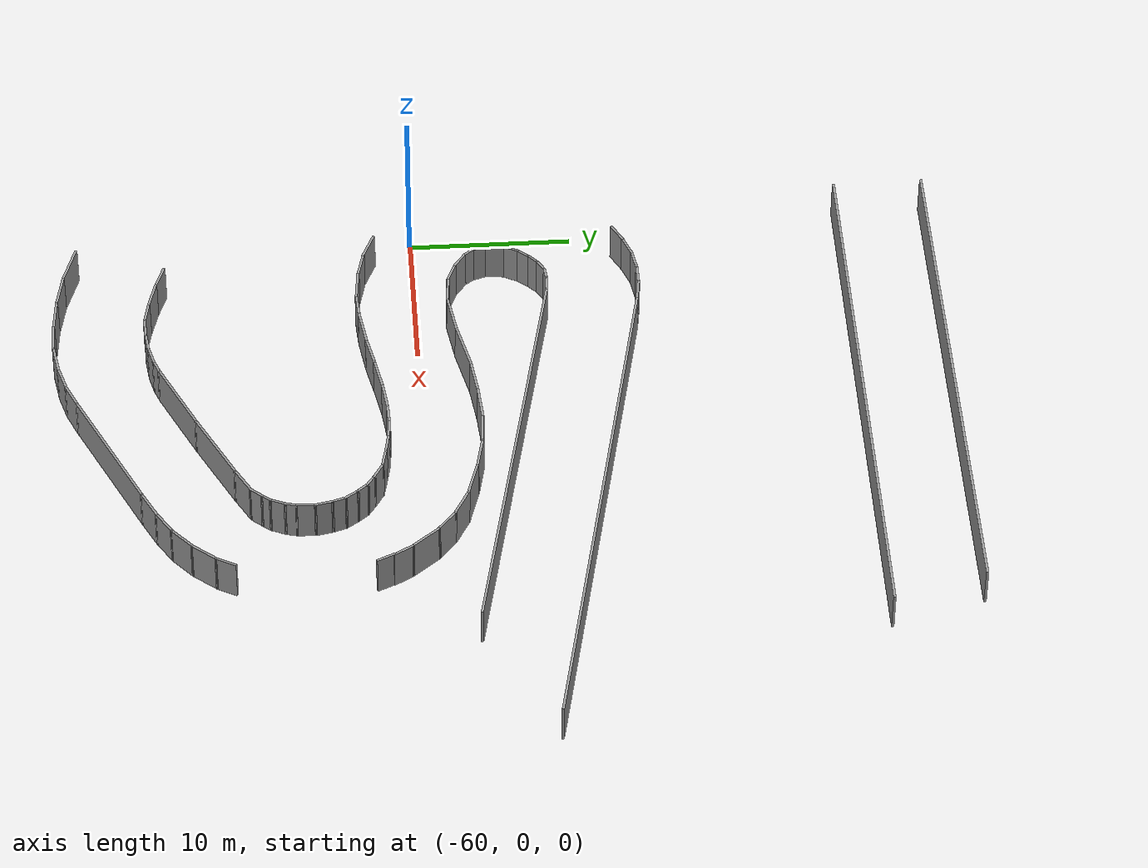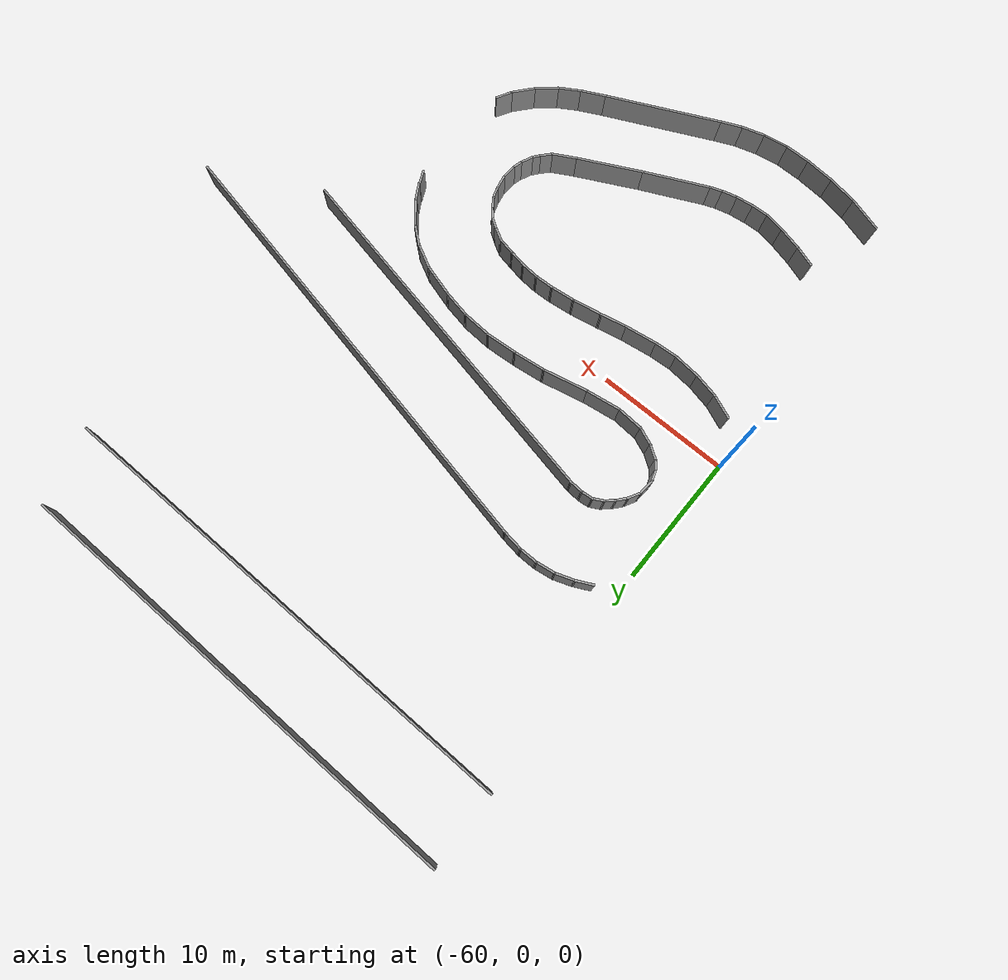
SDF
<sdf version="1.6">
 <model name="pista_l">
  <pose>-4.26084 -21.2973 0 0 -0 0</pose>
  <link name="Wall_0">
   <collision name="Wall_0_Collision">
    <geometry><box><size>34.8647 0.15 2.5</size></box></geometry>
    <pose>0 0 1.25 0 -0 0</pose>
   </collision>
   <visual name="Wall_0_Visual">
    <pose>0 0 1.25 0 -0 0</pose>
    <geometry><box><size>34.8647 0.15 2.5</size></box></geometry>
    <material>
     <script><uri>file://media/materials/scripts/gazebo.material</uri><name>Gazebo/Grey</name></script>
     <ambient>1 1 1 1</ambient>
    </material>
    <meta><layer>0</layer></meta>
   </visual>
   <pose>-39.9137 53.4663 0 0 0 -0.009195</pose>
  </link>
  <link name="Wall_247">
   <collision name="Wall_247_Collision">
    <geometry><box><size>35.0031 0.15 2.5</size></box></geometry>
    <pose>0 0 1.25 0 -0 0</pose>
   </collision>
   <visual name="Wall_247_Visual">
    <pose>0 0 1.25 0 -0 0</pose>
    <geometry><box><size>35.0031 0.15 2.5</size></box></geometry>
    <material>
     <script><uri>file://media/materials/scripts/gazebo.material</uri><name>Gazebo/Grey</name></script>
     <ambient>1 1 1 1</ambient>
    </material>
    <meta><layer>0</layer></meta>
   </visual>
   <pose>-30.3243 31.428 0 0 -0 2.94105</pose>
  </link>
  <link name="Wall_248">
   <collision name="Wall_248_Collision">
    <geometry><box><size>1.68107 0.15 2.5</size></box></geometry>
    <pose>0 0 1.25 0 -0 0</pose>
   </collision>
   <visual name="Wall_248_Visual">
    <pose>0 0 1.25 0 -0 0</pose>
    <geometry><box><size>1.68107 0.15 2.5</size></box></geometry>
    <material>
     <script><uri>file://media/materials/scripts/gazebo.material</uri><name>Gazebo/Grey</name></script>
     <ambient>1 1 1 1</ambient>
    </material>
    <meta><layer>0</layer></meta>
   </visual>
   <pose>-48.1597 35.0058 0 0 -0 3.00215</pose>
  </link>
  <link name="Wall_249">
   <collision name="Wall_249_Collision">
    <geometry><box><size>1.48001 0.15 2.5</size></box></geometry>
    <pose>0 0 1.25 0 -0 0</pose>
   </collision>
   <visual name="Wall_249_Visual">
    <pose>0 0 1.25 0 -0 0</pose>
    <geometry><box><size>1.48001 0.15 2.5</size></box></geometry>
    <material>
     <script><uri>file://media/materials/scripts/gazebo.material</uri><name>Gazebo/Grey</name></script>
     <ambient>1 1 1 1</ambient>
    </material>
    <meta><layer>0</layer></meta>
   </visual>
   <pose>-49.5829 35.1122 0 0 -0 3.14159</pose>
  </link>
  <link name="Wall_250">
   <collision name="Wall_250_Collision">
    <geometry><box><size>1.54948 0.15 2.5</size></box></geometry>
    <pose>0 0 1.25 0 -0 0</pose>
   </collision>
   <visual name="Wall_250_Visual">
    <pose>0 0 1.25 0 -0 0</pose>
    <geometry><box><size>1.54948 0.15 2.5</size></box></geometry>
    <material>
     <script><uri>file://media/materials/scripts/gazebo.material</uri><name>Gazebo/Grey</name></script>
     <ambient>1 1 1 1</ambient>
    </material>
    <meta><layer>0</layer></meta>
   </visual>
   <pose>-50.9395 35.0058 0 0 0 -2.98894</pose>
  </link>
  <link name="Wall_251">
   <collision name="Wall_251_Collision">
    <geometry><box><size>1.56357 0.15 2.5</size></box></geometry>
    <pose>0 0 1.25 0 -0 0</pose>
   </collision>
   <visual name="Wall_251_Visual">
    <pose>0 0 1.25 0 -0 0</pose>
    <geometry><box><size>1.56357 0.15 2.5</size></box></geometry>
    <material>
     <script><uri>file://media/materials/scripts/gazebo.material</uri><name>Gazebo/Grey</name></script>
     <ambient>1 1 1 1</ambient>
    </material>
    <meta><layer>0</layer></meta>
   </visual>
   <pose>-52.2961 34.66 0 0 0 -2.79604</pose>
  </link>
  <link name="Wall_252">
   <collision name="Wall_252_Collision">
    <geometry><box><size>1.39908 0.15 2.5</size></box></geometry>
    <pose>0 0 1.25 0 -0 0</pose>
   </collision>
   <visual name="Wall_252_Visual">
    <pose>0 0 1.25 0 -0 0</pose>
    <geometry><box><size>1.39908 0.15 2.5</size></box></geometry>
    <material>
     <script><uri>file://media/materials/scripts/gazebo.material</uri><name>Gazebo/Grey</name></script>
     <ambient>1 1 1 1</ambient>
    </material>
    <meta><layer>0</layer></meta>
   </visual>
   <pose>-53.5197 34.1413 0 0 0 -2.67794</pose>
  </link>
  <link name="Wall_254">
   <collision name="Wall_254_Collision">
    <geometry><box><size>28.1901 0.15 2.5</size></box></geometry>
    <pose>0 0 1.25 0 -0 0</pose>
   </collision>
   <visual name="Wall_254_Visual">
    <pose>0 0 1.25 0 -0 0</pose>
    <geometry><box><size>28.1901 0.15 2.5</size></box></geometry>
    <material>
     <script><uri>file://media/materials/scripts/gazebo.material</uri><name>Gazebo/Grey</name></script>
     <ambient>1 1 1 1</ambient>
    </material>
    <meta><layer>0</layer></meta>
   </visual>
   <pose>-34.9128 26.6267 0 0 -0 2.94103</pose>
  </link>
  <link name="Wall_255">
   <collision name="Wall_255_Collision">
    <geometry><box><size>1.10908 0.15 2.5</size></box></geometry>
    <pose>0 0 1.25 0 -0 0</pose>
   </collision>
   <visual name="Wall_255_Visual">
    <pose>0 0 1.25 0 -0 0</pose>
    <geometry><box><size>1.10908 0.15 2.5</size></box></geometry>
    <material>
     <script><uri>file://media/materials/scripts/gazebo.material</uri><name>Gazebo/Grey</name></script>
     <ambient>1 1 1 1</ambient>
    </material>
    <meta><layer>0</layer></meta>
   </visual>
   <pose>-49.1307 29.4463 0 0 -0 3.08609</pose>
  </link>
  <link name="Wall_256">
   <collision name="Wall_256_Collision">
    <geometry><box><size>0.978458 0.15 2.5</size></box></geometry>
    <pose>0 0 1.25 0 -0 0</pose>
   </collision>
   <visual name="Wall_256_Visual">
    <pose>0 0 1.25 0 -0 0</pose>
    <geometry><box><size>0.978458 0.15 2.5</size></box></geometry>
    <material>
     <script><uri>file://media/materials/scripts/gazebo.material</uri><name>Gazebo/Grey</name></script>
     <ambient>1 1 1 1</ambient>
    </material>
    <meta><layer>0</layer></meta>
   </visual>
   <pose>-50.0218 29.433 0 0 0 -3.04512</pose>
  </link>
  <link name="Wall_257">
   <collision name="Wall_257_Collision">
    <geometry><box><size>0.971597 0.15 2.5</size></box></geometry>
    <pose>0 0 1.25 0 -0 0</pose>
   </collision>
   <visual name="Wall_257_Visual">
    <pose>0 0 1.25 0 -0 0</pose>
    <geometry><box><size>0.971597 0.15 2.5</size></box></geometry>
    <material>
     <script><uri>file://media/materials/scripts/gazebo.material</uri><name>Gazebo/Grey</name></script>
     <ambient>1 1 1 1</ambient>
    </material>
    <meta><layer>0</layer></meta>
   </visual>
   <pose>-50.7932 29.1936 0 0 0 -2.63449</pose>
  </link>
  <link name="Wall_258">
   <collision name="Wall_258_Collision">
    <geometry><box><size>0.903307 0.15 2.5</size></box></geometry>
    <pose>0 0 1.25 0 -0 0</pose>
   </collision>
   <visual name="Wall_258_Visual">
    <pose>0 0 1.25 0 -0 0</pose>
    <geometry><box><size>0.903307 0.15 2.5</size></box></geometry>
    <material>
     <script><uri>file://media/materials/scripts/gazebo.material</uri><name>Gazebo/Grey</name></script>
     <ambient>1 1 1 1</ambient>
    </material>
    <meta><layer>0</layer></meta>
   </visual>
   <pose>-51.4316 28.7414 0 0 0 -2.40615</pose>
  </link>
  <link name="Wall_259">
   <collision name="Wall_259_Collision">
    <geometry><box><size>0.981017 0.15 2.5</size></box></geometry>
    <pose>0 0 1.25 0 -0 0</pose>
   </collision>
   <visual name="Wall_259_Visual">
    <pose>0 0 1.25 0 -0 0</pose>
    <geometry><box><size>0.981017 0.15 2.5</size></box></geometry>
    <material>
     <script><uri>file://media/materials/scripts/gazebo.material</uri><name>Gazebo/Grey</name></script>
     <ambient>1 1 1 1</ambient>
    </material>
    <meta><layer>0</layer></meta>
   </visual>
   <pose>-51.9769 28.1695 0 0 0 -2.26553</pose>
  </link>
  <link name="Wall_260">
   <collision name="Wall_260_Collision">
    <geometry><box><size>1.09046 0.15 2.5</size></box></geometry>
    <pose>0 0 1.25 0 -0 0</pose>
   </collision>
   <visual name="Wall_260_Visual">
    <pose>0 0 1.25 0 -0 0</pose>
    <geometry><box><size>1.09046 0.15 2.5</size></box></geometry>
    <material>
     <script><uri>file://media/materials/scripts/gazebo.material</uri><name>Gazebo/Grey</name></script>
     <ambient>1 1 1 1</ambient>
    </material>
    <meta><layer>0</layer></meta>
   </visual>
   <pose>-52.469 27.438 0 0 0 -2.0724</pose>
  </link>
  <link name="Wall_261">
   <collision name="Wall_261_Collision">
    <geometry><box><size>1.32313 0.15 2.5</size></box></geometry>
    <pose>0 0 1.25 0 -0 0</pose>
   </collision>
   <visual name="Wall_261_Visual">
    <pose>0 0 1.25 0 -0 0</pose>
    <geometry><box><size>1.32313 0.15 2.5</size></box></geometry>
    <material>
     <script><uri>file://media/materials/scripts/gazebo.material</uri><name>Gazebo/Grey</name></script>
     <ambient>1 1 1 1</ambient>
    </material>
    <meta><layer>0</layer></meta>
   </visual>
   <pose>-52.735 26.4405 0 0 0 -1.63887</pose>
  </link>
  <link name="Wall_262">
   <collision name="Wall_262_Collision">
    <geometry><box><size>0.96598 0.15 2.5</size></box></geometry>
    <pose>0 0 1.25 0 -0 0</pose>
   </collision>
   <visual name="Wall_262_Visual">
    <pose>0 0 1.25 0 -0 0</pose>
    <geometry><box><size>0.96598 0.15 2.5</size></box></geometry>
    <material>
     <script><uri>file://media/materials/scripts/gazebo.material</uri><name>Gazebo/Grey</name></script>
     <ambient>1 1 1 1</ambient>
    </material>
    <meta><layer>0</layer></meta>
   </visual>
   <pose>-52.6419 25.4696 0 0 0 -1.23874</pose>
  </link>
  <link name="Wall_264">
   <collision name="Wall_264_Collision">
    <geometry><box><size>0.793923 0.15 2.5</size></box></geometry>
    <pose>0 0 1.25 0 -0 0</pose>
   </collision>
   <visual name="Wall_264_Visual">
    <pose>0 0 1.25 0 -0 0</pose>
    <geometry><box><size>0.793923 0.15 2.5</size></box></geometry>
    <material>
     <script><uri>file://media/materials/scripts/gazebo.material</uri><name>Gazebo/Grey</name></script>
     <ambient>1 1 1 1</ambient>
    </material>
    <meta><layer>0</layer></meta>
   </visual>
   <pose>-52.2828 24.8046 0 0 0 -0.902507</pose>
  </link>
  <link name="Wall_265">
   <collision name="Wall_265_Collision">
    <geometry><box><size>1.27886 0.15 2.5</size></box></geometry>
    <pose>0 0 1.25 0 -0 0</pose>
   </collision>
   <visual name="Wall_265_Visual">
    <pose>0 0 1.25 0 -0 0</pose>
    <geometry><box><size>1.27886 0.15 2.5</size></box></geometry>
    <material>
     <script><uri>file://media/materials/scripts/gazebo.material</uri><name>Gazebo/Grey</name></script>
     <ambient>1 1 1 1</ambient>
    </material>
    <meta><layer>0</layer></meta>
   </visual>
   <pose>-51.6178 24.2327 0 0 0 -0.601074</pose>
  </link>
  <link name="Wall_266">
   <collision name="Wall_266_Collision">
    <geometry><box><size>1.47388 0.15 2.5</size></box></geometry>
    <pose>0 0 1.25 0 -0 0</pose>
   </collision>
   <visual name="Wall_266_Visual">
    <pose>0 0 1.25 0 -0 0</pose>
    <geometry><box><size>1.47388 0.15 2.5</size></box></geometry>
    <material>
     <script><uri>file://media/materials/scripts/gazebo.material</uri><name>Gazebo/Grey</name></script>
     <ambient>1 1 1 1</ambient>
    </material>
    <meta><layer>0</layer></meta>
   </visual>
   <pose>-50.5405 23.6608 0 0 0 -0.3917</pose>
  </link>
  <link name="Wall_267">
   <collision name="Wall_267_Collision">
    <geometry><box><size>2.06983 0.15 2.5</size></box></geometry>
    <pose>0 0 1.25 0 -0 0</pose>
   </collision>
   <visual name="Wall_267_Visual">
    <pose>0 0 1.25 0 -0 0</pose>
    <geometry><box><size>2.06983 0.15 2.5</size></box></geometry>
    <material>
     <script><uri>file://media/materials/scripts/gazebo.material</uri><name>Gazebo/Grey</name></script>
     <ambient>1 1 1 1</ambient>
    </material>
    <meta><layer>0</layer></meta>
   </visual>
   <pose>-48.9711 23.3416 0 0 0 -0.069333</pose>
  </link>
  <link name="Wall_268">
   <collision name="Wall_268_Collision">
    <geometry><box><size>2.73063 0.15 2.5</size></box></geometry>
    <pose>0 0 1.25 0 -0 0</pose>
   </collision>
   <visual name="Wall_268_Visual">
    <pose>0 0 1.25 0 -0 0</pose>
    <geometry><box><size>2.73063 0.15 2.5</size></box></geometry>
    <material>
     <script><uri>file://media/materials/scripts/gazebo.material</uri><name>Gazebo/Grey</name></script>
     <ambient>1 1 1 1</ambient>
    </material>
    <meta><layer>0</layer></meta>
   </visual>
   <pose>-46.7366 23.4613 0 0 -0 0.144812</pose>
  </link>
  <link name="Wall_269">
   <collision name="Wall_269_Collision">
    <geometry><box><size>3.47375 0.15 2.5</size></box></geometry>
    <pose>0 0 1.25 0 -0 0</pose>
   </collision>
   <visual name="Wall_269_Visual">
    <pose>0 0 1.25 0 -0 0</pose>
    <geometry><box><size>3.47375 0.15 2.5</size></box></geometry>
    <material>
     <script><uri>file://media/materials/scripts/gazebo.material</uri><name>Gazebo/Grey</name></script>
     <ambient>1 1 1 1</ambient>
    </material>
    <meta><layer>0</layer></meta>
   </visual>
   <pose>-43.8372 24.0066 0 0 -0 0.217801</pose>
  </link>
  <link name="Wall_270">
   <collision name="Wall_270_Collision">
    <geometry><box><size>2.53543 0.15 2.5</size></box></geometry>
    <pose>0 0 1.25 0 -0 0</pose>
   </collision>
   <visual name="Wall_270_Visual">
    <pose>0 0 1.25 0 -0 0</pose>
    <geometry><box><size>2.53543 0.15 2.5</size></box></geometry>
    <material>
     <script><uri>file://media/materials/scripts/gazebo.material</uri><name>Gazebo/Grey</name></script>
     <ambient>1 1 1 1</ambient>
    </material>
    <meta><layer>0</layer></meta>
   </visual>
   <pose>-41.0309 24.512 0 0 -0 0.122972</pose>
  </link>
  <link name="Wall_271">
   <collision name="Wall_271_Collision">
    <geometry><box><size>2.41664 0.15 2.5</size></box></geometry>
    <pose>0 0 1.25 0 -0 0</pose>
   </collision>
   <visual name="Wall_271_Visual">
    <pose>0 0 1.25 0 -0 0</pose>
    <geometry><box><size>2.41664 0.15 2.5</size></box></geometry>
    <material>
     <script><uri>file://media/materials/scripts/gazebo.material</uri><name>Gazebo/Grey</name></script>
     <ambient>1 1 1 1</ambient>
    </material>
    <meta><layer>0</layer></meta>
   </visual>
   <pose>-38.7167 24.7381 0 0 -0 0.070471</pose>
  </link>
  <link name="Wall_272">
   <collision name="Wall_272_Collision">
    <geometry><box><size>2.33527 0.15 2.5</size></box></geometry>
    <pose>0 0 1.25 0 -0 0</pose>
   </collision>
   <visual name="Wall_272_Visual">
    <pose>0 0 1.25 0 -0 0</pose>
    <geometry><box><size>2.33527 0.15 2.5</size></box></geometry>
    <material>
     <script><uri>file://media/materials/scripts/gazebo.material</uri><name>Gazebo/Grey</name></script>
     <ambient>1 1 1 1</ambient>
    </material>
    <meta><layer>0</layer></meta>
   </visual>
   <pose>-36.4956 24.7514 0 0 0 -0.0609</pose>
  </link>
  <link name="Wall_273">
   <collision name="Wall_273_Collision">
    <geometry><box><size>2.18452 0.15 2.5</size></box></geometry>
    <pose>0 0 1.25 0 -0 0</pose>
   </collision>
   <visual name="Wall_273_Visual">
    <pose>0 0 1.25 0 -0 0</pose>
    <geometry><box><size>2.18452 0.15 2.5</size></box></geometry>
    <material>
     <script><uri>file://media/materials/scripts/gazebo.material</uri><name>Gazebo/Grey</name></script>
     <ambient>1 1 1 1</ambient>
    </material>
    <meta><layer>0</layer></meta>
   </visual>
   <pose>-34.4074 24.4854 0 0 0 -0.197396</pose>
  </link>
  <link name="Wall_274">
   <collision name="Wall_274_Collision">
    <geometry><box><size>2.61637 0.15 2.5</size></box></geometry>
    <pose>0 0 1.25 0 -0 0</pose>
   </collision>
   <visual name="Wall_274_Visual">
    <pose>0 0 1.25 0 -0 0</pose>
    <geometry><box><size>2.61637 0.15 2.5</size></box></geometry>
    <material>
     <script><uri>file://media/materials/scripts/gazebo.material</uri><name>Gazebo/Grey</name></script>
     <ambient>1 1 1 1</ambient>
    </material>
    <meta><layer>0</layer></meta>
   </visual>
   <pose>-32.2262 23.9401 0 0 0 -0.284226</pose>
  </link>
  <link name="Wall_275">
   <collision name="Wall_275_Collision">
    <geometry><box><size>2.0418 0.15 2.5</size></box></geometry>
    <pose>0 0 1.25 0 -0 0</pose>
   </collision>
   <visual name="Wall_275_Visual">
    <pose>0 0 1.25 0 -0 0</pose>
    <geometry><box><size>2.0418 0.15 2.5</size></box></geometry>
    <material>
     <script><uri>file://media/materials/scripts/gazebo.material</uri><name>Gazebo/Grey</name></script>
     <ambient>1 1 1 1</ambient>
    </material>
    <meta><layer>0</layer></meta>
   </visual>
   <pose>-30.2046 23.1554 0 0 0 -0.482513</pose>
  </link>
  <link name="Wall_276">
   <collision name="Wall_276_Collision">
    <geometry><box><size>1.79513 0.15 2.5</size></box></geometry>
    <pose>0 0 1.25 0 -0 0</pose>
   </collision>
   <visual name="Wall_276_Visual">
    <pose>0 0 1.25 0 -0 0</pose>
    <geometry><box><size>1.79513 0.15 2.5</size></box></geometry>
    <material>
     <script><uri>file://media/materials/scripts/gazebo.material</uri><name>Gazebo/Grey</name></script>
     <ambient>1 1 1 1</ambient>
    </material>
    <meta><layer>0</layer></meta>
   </visual>
   <pose>-28.7283 22.1978 0 0 0 -0.682317</pose>
  </link>
  <link name="Wall_277">
   <collision name="Wall_277_Collision">
    <geometry><box><size>2.22754 0.15 2.5</size></box></geometry>
    <pose>0 0 1.25 0 -0 0</pose>
   </collision>
   <visual name="Wall_277_Visual">
    <pose>0 0 1.25 0 -0 0</pose>
    <geometry><box><size>2.22754 0.15 2.5</size></box></geometry>
    <material>
     <script><uri>file://media/materials/scripts/gazebo.material</uri><name>Gazebo/Grey</name></script>
     <ambient>1 1 1 1</ambient>
    </material>
    <meta><layer>0</layer></meta>
   </visual>
   <pose>-27.4249 20.8811 0 0 0 -0.876058</pose>
  </link>
  <link name="Wall_278">
   <collision name="Wall_278_Collision">
    <geometry><box><size>1.41372 0.15 2.5</size></box></geometry>
    <pose>0 0 1.25 0 -0 0</pose>
   </collision>
   <visual name="Wall_278_Visual">
    <pose>0 0 1.25 0 -0 0</pose>
    <geometry><box><size>1.41372 0.15 2.5</size></box></geometry>
    <material>
     <script><uri>file://media/materials/scripts/gazebo.material</uri><name>Gazebo/Grey</name></script>
     <ambient>1 1 1 1</ambient>
    </material>
    <meta><layer>0</layer></meta>
   </visual>
   <pose>-26.4407 19.5377 0 0 0 -1.04121</pose>
  </link>
  <link name="Wall_292">
   <collision name="Wall_292_Collision">
    <geometry><box><size>1.93836 0.15 2.5</size></box></geometry>
    <pose>0 0 1.25 0 -0 0</pose>
   </collision>
   <visual name="Wall_292_Visual">
    <pose>0 0 1.25 0 -0 0</pose>
    <geometry><box><size>1.93836 0.15 2.5</size></box></geometry>
    <material>
     <script><uri>file://media/materials/scripts/gazebo.material</uri><name>Gazebo/Grey</name></script>
     <ambient>1 1 1 1</ambient>
    </material>
    <meta><layer>0</layer></meta>
   </visual>
   <pose>-53.2537 18.62 0 0 0 -0.397079</pose>
  </link>
  <link name="Wall_293">
   <collision name="Wall_293_Collision">
    <geometry><box><size>1.97633 0.15 2.5</size></box></geometry>
    <pose>0 0 1.25 0 -0 0</pose>
   </collision>
   <visual name="Wall_293_Visual">
    <pose>0 0 1.25 0 -0 0</pose>
    <geometry><box><size>1.97633 0.15 2.5</size></box></geometry>
    <material>
     <script><uri>file://media/materials/scripts/gazebo.material</uri><name>Gazebo/Grey</name></script>
     <ambient>1 1 1 1</ambient>
    </material>
    <meta><layer>0</layer></meta>
   </visual>
   <pose>-51.538 18.0747 0 0 0 -0.220249</pose>
  </link>
  <link name="Wall_294">
   <collision name="Wall_294_Collision">
    <geometry><box><size>2.1272 0.15 2.5</size></box></geometry>
    <pose>0 0 1.25 0 -0 0</pose>
   </collision>
   <visual name="Wall_294_Visual">
    <pose>0 0 1.25 0 -0 0</pose>
    <geometry><box><size>2.1272 0.15 2.5</size></box></geometry>
    <material>
     <script><uri>file://media/materials/scripts/gazebo.material</uri><name>Gazebo/Grey</name></script>
     <ambient>1 1 1 1</ambient>
    </material>
    <meta><layer>0</layer></meta>
   </visual>
   <pose>-49.6627 17.7821 0 0 0 -0.094314</pose>
  </link>
  <link name="Wall_295">
   <collision name="Wall_295_Collision">
    <geometry><box><size>1.82919 0.15 2.5</size></box></geometry>
    <pose>0 0 1.25 0 -0 0</pose>
   </collision>
   <visual name="Wall_295_Visual">
    <pose>0 0 1.25 0 -0 0</pose>
    <geometry><box><size>1.82919 0.15 2.5</size></box></geometry>
    <material>
     <script><uri>file://media/materials/scripts/gazebo.material</uri><name>Gazebo/Grey</name></script>
     <ambient>1 1 1 1</ambient>
    </material>
    <meta><layer>0</layer></meta>
   </visual>
   <pose>-47.8405 17.7422 0 0 -0 0.063407</pose>
  </link>
  <link name="Wall_296">
   <collision name="Wall_296_Collision">
    <geometry><box><size>2.54254 0.15 2.5</size></box></geometry>
    <pose>0 0 1.25 0 -0 0</pose>
   </collision>
   <visual name="Wall_296_Visual">
    <pose>0 0 1.25 0 -0 0</pose>
    <geometry><box><size>2.54254 0.15 2.5</size></box></geometry>
    <material>
     <script><uri>file://media/materials/scripts/gazebo.material</uri><name>Gazebo/Grey</name></script>
     <ambient>1 1 1 1</ambient>
    </material>
    <meta><layer>0</layer></meta>
   </visual>
   <pose>-45.8189 17.9683 0 0 -0 0.145042</pose>
  </link>
  <link name="Wall_297">
   <collision name="Wall_297_Collision">
    <geometry><box><size>2.10634 0.15 2.5</size></box></geometry>
    <pose>0 0 1.25 0 -0 0</pose>
   </collision>
   <visual name="Wall_297_Visual">
    <pose>0 0 1.25 0 -0 0</pose>
    <geometry><box><size>2.10634 0.15 2.5</size></box></geometry>
    <material>
     <script><uri>file://media/materials/scripts/gazebo.material</uri><name>Gazebo/Grey</name></script>
     <ambient>1 1 1 1</ambient>
    </material>
    <meta><layer>0</layer></meta>
   </visual>
   <pose>-43.6776 18.3407 0 0 -0 0.205395</pose>
  </link>
  <link name="Wall_298">
   <collision name="Wall_298_Collision">
    <geometry><box><size>2.36741 0.15 2.5</size></box></geometry>
    <pose>0 0 1.25 0 -0 0</pose>
   </collision>
   <visual name="Wall_298_Visual">
    <pose>0 0 1.25 0 -0 0</pose>
    <geometry><box><size>2.36741 0.15 2.5</size></box></geometry>
    <material>
     <script><uri>file://media/materials/scripts/gazebo.material</uri><name>Gazebo/Grey</name></script>
     <ambient>1 1 1 1</ambient>
    </material>
    <meta><layer>0</layer></meta>
   </visual>
   <pose>-41.6294 18.7397 0 0 -0 0.180926</pose>
  </link>
  <link name="Wall_299">
   <collision name="Wall_299_Collision">
    <geometry><box><size>1.94487 0.15 2.5</size></box></geometry>
    <pose>0 0 1.25 0 -0 0</pose>
   </collision>
   <visual name="Wall_299_Visual">
    <pose>0 0 1.25 0 -0 0</pose>
    <geometry><box><size>1.94487 0.15 2.5</size></box></geometry>
    <material>
     <script><uri>file://media/materials/scripts/gazebo.material</uri><name>Gazebo/Grey</name></script>
     <ambient>1 1 1 1</ambient>
    </material>
    <meta><layer>0</layer></meta>
   </visual>
   <pose>-39.6477 19.0456 0 0 -0 0.11884</pose>
  </link>
  <link name="Wall_300">
   <collision name="Wall_300_Collision">
    <geometry><box><size>1.50687 0.15 2.5</size></box></geometry>
    <pose>0 0 1.25 0 -0 0</pose>
   </collision>
   <visual name="Wall_300_Visual">
    <pose>0 0 1.25 0 -0 0</pose>
    <geometry><box><size>1.50687 0.15 2.5</size></box></geometry>
    <material>
     <script><uri>file://media/materials/scripts/gazebo.material</uri><name>Gazebo/Grey</name></script>
     <ambient>1 1 1 1</ambient>
    </material>
    <meta><layer>0</layer></meta>
   </visual>
   <pose>-38.0783 19.1786 0 0 -0 0.039196</pose>
  </link>
  <link name="Wall_301">
   <collision name="Wall_301_Collision">
    <geometry><box><size>1.45775 0.15 2.5</size></box></geometry>
    <pose>0 0 1.25 0 -0 0</pose>
   </collision>
   <visual name="Wall_301_Visual">
    <pose>0 0 1.25 0 -0 0</pose>
    <geometry><box><size>1.45775 0.15 2.5</size></box></geometry>
    <material>
     <script><uri>file://media/materials/scripts/gazebo.material</uri><name>Gazebo/Grey</name></script>
     <ambient>1 1 1 1</ambient>
    </material>
    <meta><layer>0</layer></meta>
   </visual>
   <pose>-36.7483 19.152 0 0 0 -0.081452</pose>
  </link>
  <link name="Wall_302">
   <collision name="Wall_302_Collision">
    <geometry><box><size>1.36578 0.15 2.5</size></box></geometry>
    <pose>0 0 1.25 0 -0 0</pose>
   </collision>
   <visual name="Wall_302_Visual">
    <pose>0 0 1.25 0 -0 0</pose>
    <geometry><box><size>1.36578 0.15 2.5</size></box></geometry>
    <material>
     <script><uri>file://media/materials/scripts/gazebo.material</uri><name>Gazebo/Grey</name></script>
     <ambient>1 1 1 1</ambient>
    </material>
    <meta><layer>0</layer></meta>
   </visual>
   <pose>-35.4981 18.9924 0 0 0 -0.17594</pose>
  </link>
  <link name="Wall_303">
   <collision name="Wall_303_Collision">
    <geometry><box><size>1.45422 0.15 2.5</size></box></geometry>
    <pose>0 0 1.25 0 -0 0</pose>
   </collision>
   <visual name="Wall_303_Visual">
    <pose>0 0 1.25 0 -0 0</pose>
    <geometry><box><size>1.45422 0.15 2.5</size></box></geometry>
    <material>
     <script><uri>file://media/materials/scripts/gazebo.material</uri><name>Gazebo/Grey</name></script>
     <ambient>1 1 1 1</ambient>
    </material>
    <meta><layer>0</layer></meta>
   </visual>
   <pose>-34.2611 18.753 0 0 0 -0.205395</pose>
  </link>
  <link name="Wall_304">
   <collision name="Wall_304_Collision">
    <geometry><box><size>1.22229 0.15 2.5</size></box></geometry>
    <pose>0 0 1.25 0 -0 0</pose>
   </collision>
   <visual name="Wall_304_Visual">
    <pose>0 0 1.25 0 -0 0</pose>
    <geometry><box><size>1.22229 0.15 2.5</size></box></geometry>
    <material>
     <script><uri>file://media/materials/scripts/gazebo.material</uri><name>Gazebo/Grey</name></script>
     <ambient>1 1 1 1</ambient>
    </material>
    <meta><layer>0</layer></meta>
   </visual>
   <pose>-33.1572 18.354 0 0 0 -0.519146</pose>
  </link>
  <link name="Wall_305">
   <collision name="Wall_305_Collision">
    <geometry><box><size>0.917267 0.15 2.5</size></box></geometry>
    <pose>0 0 1.25 0 -0 0</pose>
   </collision>
   <visual name="Wall_305_Visual">
    <pose>0 0 1.25 0 -0 0</pose>
    <geometry><box><size>0.917267 0.15 2.5</size></box></geometry>
    <material>
     <script><uri>file://media/materials/scripts/gazebo.material</uri><name>Gazebo/Grey</name></script>
     <ambient>1 1 1 1</ambient>
    </material>
    <meta><layer>0</layer></meta>
   </visual>
   <pose>-32.3725 17.8752 0 0 0 -0.588003</pose>
  </link>
  <link name="Wall_306">
   <collision name="Wall_306_Collision">
    <geometry><box><size>0.960761 0.15 2.5</size></box></geometry>
    <pose>0 0 1.25 0 -0 0</pose>
   </collision>
   <visual name="Wall_306_Visual">
    <pose>0 0 1.25 0 -0 0</pose>
    <geometry><box><size>0.960761 0.15 2.5</size></box></geometry>
    <material>
     <script><uri>file://media/materials/scripts/gazebo.material</uri><name>Gazebo/Grey</name></script>
     <ambient>1 1 1 1</ambient>
    </material>
    <meta><layer>0</layer></meta>
   </visual>
   <pose>-31.7873 17.3565 0 0 0 -0.855053</pose>
  </link>
  <link name="Wall_307">
   <collision name="Wall_307_Collision">
    <geometry><box><size>1.02821 0.15 2.5</size></box></geometry>
    <pose>0 0 1.25 0 -0 0</pose>
   </collision>
   <visual name="Wall_307_Visual">
    <pose>0 0 1.25 0 -0 0</pose>
    <geometry><box><size>1.02821 0.15 2.5</size></box></geometry>
    <material>
     <script><uri>file://media/materials/scripts/gazebo.material</uri><name>Gazebo/Grey</name></script>
     <ambient>1 1 1 1</ambient>
    </material>
    <meta><layer>0</layer></meta>
   </visual>
   <pose>-31.2686 16.6915 0 0 0 -0.957589</pose>
  </link>
  <link name="Wall_308">
   <collision name="Wall_308_Collision">
    <geometry><box><size>0.991172 0.15 2.5</size></box></geometry>
    <pose>0 0 1.25 0 -0 0</pose>
   </collision>
   <visual name="Wall_308_Visual">
    <pose>0 0 1.25 0 -0 0</pose>
    <geometry><box><size>0.991172 0.15 2.5</size></box></geometry>
    <material>
     <script><uri>file://media/materials/scripts/gazebo.material</uri><name>Gazebo/Grey</name></script>
     <ambient>1 1 1 1</ambient>
    </material>
    <meta><layer>0</layer></meta>
   </visual>
   <pose>-30.8829 15.9334 0 0 0 -1.24905</pose>
  </link>
  <link name="Wall_309">
   <collision name="Wall_309_Collision">
    <geometry><box><size>1.18297 0.15 2.5</size></box></geometry>
    <pose>0 0 1.25 0 -0 0</pose>
   </collision>
   <visual name="Wall_309_Visual">
    <pose>0 0 1.25 0 -0 0</pose>
    <geometry><box><size>1.18297 0.15 2.5</size></box></geometry>
    <material>
     <script><uri>file://media/materials/scripts/gazebo.material</uri><name>Gazebo/Grey</name></script>
     <ambient>1 1 1 1</ambient>
    </material>
    <meta><layer>0</layer></meta>
   </visual>
   <pose>-30.6435 15.029 0 0 0 -1.3633</pose>
  </link>
  <link name="Wall_310">
   <collision name="Wall_310_Collision">
    <geometry><box><size>1.24191 0.15 2.5</size></box></geometry>
    <pose>0 0 1.25 0 -0 0</pose>
   </collision>
   <visual name="Wall_310_Visual">
    <pose>0 0 1.25 0 -0 0</pose>
    <geometry><box><size>1.24191 0.15 2.5</size></box></geometry>
    <material>
     <script><uri>file://media/materials/scripts/gazebo.material</uri><name>Gazebo/Grey</name></script>
     <ambient>1 1 1 1</ambient>
    </material>
    <meta><layer>0</layer></meta>
   </visual>
   <pose>-30.5637 13.9783 0 0 0 -1.61954</pose>
  </link>
  <link name="Wall_312">
   <collision name="Wall_312_Collision">
    <geometry><box><size>1.26847 0.15 2.5</size></box></geometry>
    <pose>0 0 1.25 0 -0 0</pose>
   </collision>
   <visual name="Wall_312_Visual">
    <pose>0 0 1.25 0 -0 0</pose>
    <geometry><box><size>1.26847 0.15 2.5</size></box></geometry>
    <material>
     <script><uri>file://media/materials/scripts/gazebo.material</uri><name>Gazebo/Grey</name></script>
     <ambient>1 1 1 1</ambient>
    </material>
    <meta><layer>0</layer></meta>
   </visual>
   <pose>-25.9353 18.5136 0 0 0 -1.12842</pose>
  </link>
  <link name="Wall_319">
   <collision name="Wall_319_Collision">
    <geometry><box><size>0.808053 0.15 2.5</size></box></geometry>
    <pose>0 0 1.25 0 -0 0</pose>
   </collision>
   <visual name="Wall_319_Visual">
    <pose>0 0 1.25 0 -0 0</pose>
    <geometry><box><size>0.808053 0.15 2.5</size></box></geometry>
    <material>
     <script><uri>file://media/materials/scripts/gazebo.material</uri><name>Gazebo/Grey</name></script>
     <ambient>1 1 1 1</ambient>
    </material>
    <meta><layer>0</layer></meta>
   </visual>
   <pose>-30.6701 13.0872 0 0 0 -1.81577</pose>
  </link>
  <link name="Wall_320">
   <collision name="Wall_320_Collision">
    <geometry><box><size>1.0791 0.15 2.5</size></box></geometry>
    <pose>0 0 1.25 0 -0 0</pose>
   </collision>
   <visual name="Wall_320_Visual">
    <pose>0 0 1.25 0 -0 0</pose>
    <geometry><box><size>1.0791 0.15 2.5</size></box></geometry>
    <material>
     <script><uri>file://media/materials/scripts/gazebo.material</uri><name>Gazebo/Grey</name></script>
     <ambient>1 1 1 1</ambient>
    </material>
    <meta><layer>0</layer></meta>
   </visual>
   <pose>-30.9361 12.3424 0 0 0 -1.98321</pose>
  </link>
  <link name="Wall_321">
   <collision name="Wall_321_Collision">
    <geometry><box><size>0.756578 0.15 2.5</size></box></geometry>
    <pose>0 0 1.25 0 -0 0</pose>
   </collision>
   <visual name="Wall_321_Visual">
    <pose>0 0 1.25 0 -0 0</pose>
    <geometry><box><size>0.756578 0.15 2.5</size></box></geometry>
    <material>
     <script><uri>file://media/materials/scripts/gazebo.material</uri><name>Gazebo/Grey</name></script>
     <ambient>1 1 1 1</ambient>
    </material>
    <meta><layer>0</layer></meta>
   </visual>
   <pose>-31.3085 11.6774 0 0 0 -2.23184</pose>
  </link>
  <link name="Wall_322">
   <collision name="Wall_322_Collision">
    <geometry><box><size>1.03583 0.15 2.5</size></box></geometry>
    <pose>0 0 1.25 0 -0 0</pose>
   </collision>
   <visual name="Wall_322_Visual">
    <pose>0 0 1.25 0 -0 0</pose>
    <geometry><box><size>1.03583 0.15 2.5</size></box></geometry>
    <material>
     <script><uri>file://media/materials/scripts/gazebo.material</uri><name>Gazebo/Grey</name></script>
     <ambient>1 1 1 1</ambient>
    </material>
    <meta><layer>0</layer></meta>
   </visual>
   <pose>-31.7873 11.1055 0 0 0 -2.29245</pose>
  </link>
  <link name="Wall_323">
   <collision name="Wall_323_Collision">
    <geometry><box><size>1.97148 0.15 2.5</size></box></geometry>
    <pose>0 0 1.25 0 -0 0</pose>
   </collision>
   <visual name="Wall_323_Visual">
    <pose>0 0 1.25 0 -0 0</pose>
    <geometry><box><size>1.97148 0.15 2.5</size></box></geometry>
    <material>
     <script><uri>file://media/materials/scripts/gazebo.material</uri><name>Gazebo/Grey</name></script>
     <ambient>1 1 1 1</ambient>
    </material>
    <meta><layer>0</layer></meta>
   </visual>
   <pose>-32.8779 10.3341 0 0 0 -2.63875</pose>
  </link>
  <link name="Wall_324">
   <collision name="Wall_324_Collision">
    <geometry><box><size>5.12253 0.15 2.5</size></box></geometry>
    <pose>0 0 1.25 0 -0 0</pose>
   </collision>
   <visual name="Wall_324_Visual">
    <pose>0 0 1.25 0 -0 0</pose>
    <geometry><box><size>5.12253 0.15 2.5</size></box></geometry>
    <material>
     <script><uri>file://media/materials/scripts/gazebo.material</uri><name>Gazebo/Grey</name></script>
     <ambient>1 1 1 1</ambient>
    </material>
    <meta><layer>0</layer></meta>
   </visual>
   <pose>-35.8971 8.77797 0 0 0 -2.67555</pose>
  </link>
  <link name="Wall_325">
   <collision name="Wall_325_Collision">
    <geometry><box><size>5.20719 0.15 2.5</size></box></geometry>
    <pose>0 0 1.25 0 -0 0</pose>
   </collision>
   <visual name="Wall_325_Visual">
    <pose>0 0 1.25 0 -0 0</pose>
    <geometry><box><size>5.20719 0.15 2.5</size></box></geometry>
    <material>
     <script><uri>file://media/materials/scripts/gazebo.material</uri><name>Gazebo/Grey</name></script>
     <ambient>1 1 1 1</ambient>
    </material>
    <meta><layer>0</layer></meta>
   </visual>
   <pose>-40.4058 6.58345 0 0 0 -2.70147</pose>
  </link>
  <link name="Wall_326">
   <collision name="Wall_326_Collision">
    <geometry><box><size>1.05909 0.15 2.5</size></box></geometry>
    <pose>0 0 1.25 0 -0 0</pose>
   </collision>
   <visual name="Wall_326_Visual">
    <pose>0 0 1.25 0 -0 0</pose>
    <geometry><box><size>1.05909 0.15 2.5</size></box></geometry>
    <material>
     <script><uri>file://media/materials/scripts/gazebo.material</uri><name>Gazebo/Grey</name></script>
     <ambient>1 1 1 1</ambient>
    </material>
    <meta><layer>0</layer></meta>
   </visual>
   <pose>-43.119 5.34654 0 0 0 -2.78282</pose>
  </link>
  <link name="Wall_327">
   <collision name="Wall_327_Collision">
    <geometry><box><size>1.33064 0.15 2.5</size></box></geometry>
    <pose>0 0 1.25 0 -0 0</pose>
   </collision>
   <visual name="Wall_327_Visual">
    <pose>0 0 1.25 0 -0 0</pose>
    <geometry><box><size>1.33064 0.15 2.5</size></box></geometry>
    <material>
     <script><uri>file://media/materials/scripts/gazebo.material</uri><name>Gazebo/Grey</name></script>
     <ambient>1 1 1 1</ambient>
    </material>
    <meta><layer>0</layer></meta>
   </visual>
   <pose>-44.1165 5.04064 0 0 0 -2.89115</pose>
  </link>
  <link name="Wall_328">
   <collision name="Wall_328_Collision">
    <geometry><box><size>1.43675 0.15 2.5</size></box></geometry>
    <pose>0 0 1.25 0 -0 0</pose>
   </collision>
   <visual name="Wall_328_Visual">
    <pose>0 0 1.25 0 -0 0</pose>
    <geometry><box><size>1.43675 0.15 2.5</size></box></geometry>
    <material>
     <script><uri>file://media/materials/scripts/gazebo.material</uri><name>Gazebo/Grey</name></script>
     <ambient>1 1 1 1</ambient>
    </material>
    <meta><layer>0</layer></meta>
   </visual>
   <pose>-45.3268 4.81454 0 0 0 -3.01724</pose>
  </link>
  <link name="Wall_329">
   <collision name="Wall_329_Collision">
    <geometry><box><size>1.40134 0.15 2.5</size></box></geometry>
    <pose>0 0 1.25 0 -0 0</pose>
   </collision>
   <visual name="Wall_329_Visual">
    <pose>0 0 1.25 0 -0 0</pose>
    <geometry><box><size>1.40134 0.15 2.5</size></box></geometry>
    <material>
     <script><uri>file://media/materials/scripts/gazebo.material</uri><name>Gazebo/Grey</name></script>
     <ambient>1 1 1 1</ambient>
    </material>
    <meta><layer>0</layer></meta>
   </visual>
   <pose>-46.5903 4.70814 0 0 0 -3.09906</pose>
  </link>
  <link name="Wall_330">
   <collision name="Wall_330_Collision">
    <geometry><box><size>1.66318 0.15 2.5</size></box></geometry>
    <pose>0 0 1.25 0 -0 0</pose>
   </collision>
   <visual name="Wall_330_Visual">
    <pose>0 0 1.25 0 -0 0</pose>
    <geometry><box><size>1.66318 0.15 2.5</size></box></geometry>
    <material>
     <script><uri>file://media/materials/scripts/gazebo.material</uri><name>Gazebo/Grey</name></script>
     <ambient>1 1 1 1</ambient>
    </material>
    <meta><layer>0</layer></meta>
   </visual>
   <pose>-47.9602 4.81454 0 0 -0 2.96488</pose>
  </link>
  <link name="Wall_331">
   <collision name="Wall_331_Collision">
    <geometry><box><size>1.93717 0.15 2.5</size></box></geometry>
    <pose>0 0 1.25 0 -0 0</pose>
   </collision>
   <visual name="Wall_331_Visual">
    <pose>0 0 1.25 0 -0 0</pose>
    <geometry><box><size>1.93717 0.15 2.5</size></box></geometry>
    <material>
     <script><uri>file://media/materials/scripts/gazebo.material</uri><name>Gazebo/Grey</name></script>
     <ambient>1 1 1 1</ambient>
    </material>
    <meta><layer>0</layer></meta>
   </visual>
   <pose>-49.5696 5.17364 0 0 -0 2.88578</pose>
  </link>
  <link name="Wall_332">
   <collision name="Wall_332_Collision">
    <geometry><box><size>1.69785 0.15 2.5</size></box></geometry>
    <pose>0 0 1.25 0 -0 0</pose>
   </collision>
   <visual name="Wall_332_Visual">
    <pose>0 0 1.25 0 -0 0</pose>
    <geometry><box><size>1.69785 0.15 2.5</size></box></geometry>
    <material>
     <script><uri>file://media/materials/scripts/gazebo.material</uri><name>Gazebo/Grey</name></script>
     <ambient>1 1 1 1</ambient>
    </material>
    <meta><layer>0</layer></meta>
   </visual>
   <pose>-51.1656 5.65244 0 0 -0 2.80897</pose>
  </link>
  <link name="Wall_338">
   <collision name="Wall_338_Collision">
    <geometry><box><size>1.3877 0.15 2.5</size></box></geometry>
    <pose>0 0 1.25 0 -0 0</pose>
   </collision>
   <visual name="Wall_338_Visual">
    <pose>0 0 1.25 0 -0 0</pose>
    <geometry><box><size>1.3877 0.15 2.5</size></box></geometry>
    <material>
     <script><uri>file://media/materials/scripts/gazebo.material</uri><name>Gazebo/Grey</name></script>
     <ambient>1 1 1 1</ambient>
    </material>
    <meta><layer>0</layer></meta>
   </visual>
   <pose>-26.1481 9.16367 0 0 0 -2.06328</pose>
  </link>
  <link name="Wall_339">
   <collision name="Wall_339_Collision">
    <geometry><box><size>1.94487 0.15 2.5</size></box></geometry>
    <pose>0 0 1.25 0 -0 0</pose>
   </collision>
   <visual name="Wall_339_Visual">
    <pose>0 0 1.25 0 -0 0</pose>
    <geometry><box><size>1.94487 0.15 2.5</size></box></geometry>
    <material>
     <script><uri>file://media/materials/scripts/gazebo.material</uri><name>Gazebo/Grey</name></script>
     <ambient>1 1 1 1</ambient>
    </material>
    <meta><layer>0</layer></meta>
   </visual>
   <pose>-27.0126 7.92676 0 0 0 -2.26174</pose>
  </link>
  <link name="Wall_340">
   <collision name="Wall_340_Collision">
    <geometry><box><size>1.92166 0.15 2.5</size></box></geometry>
    <pose>0 0 1.25 0 -0 0</pose>
   </collision>
   <visual name="Wall_340_Visual">
    <pose>0 0 1.25 0 -0 0</pose>
    <geometry><box><size>1.92166 0.15 2.5</size></box></geometry>
    <material>
     <script><uri>file://media/materials/scripts/gazebo.material</uri><name>Gazebo/Grey</name></script>
     <ambient>1 1 1 1</ambient>
    </material>
    <meta><layer>0</layer></meta>
   </visual>
   <pose>-28.2495 6.64995 0 0 0 -2.41994</pose>
  </link>
  <link name="Wall_341">
   <collision name="Wall_341_Collision">
    <geometry><box><size>1.8334 0.15 2.5</size></box></geometry>
    <pose>0 0 1.25 0 -0 0</pose>
   </collision>
   <visual name="Wall_341_Visual">
    <pose>0 0 1.25 0 -0 0</pose>
    <geometry><box><size>1.8334 0.15 2.5</size></box></geometry>
    <material>
     <script><uri>file://media/materials/scripts/gazebo.material</uri><name>Gazebo/Grey</name></script>
     <ambient>1 1 1 1</ambient>
    </material>
    <meta><layer>0</layer></meta>
   </visual>
   <pose>-29.6327 5.62584 0 0 0 -2.59304</pose>
  </link>
  <link name="Wall_342">
   <collision name="Wall_342_Collision">
    <geometry><box><size>2.05335 0.15 2.5</size></box></geometry>
    <pose>0 0 1.25 0 -0 0</pose>
   </collision>
   <visual name="Wall_342_Visual">
    <pose>0 0 1.25 0 -0 0</pose>
    <geometry><box><size>2.05335 0.15 2.5</size></box></geometry>
    <material>
     <script><uri>file://media/materials/scripts/gazebo.material</uri><name>Gazebo/Grey</name></script>
     <ambient>1 1 1 1</ambient>
    </material>
    <meta><layer>0</layer></meta>
   </visual>
   <pose>-31.2021 4.76134 0 0 0 -2.67794</pose>
  </link>
  <link name="Wall_343">
   <collision name="Wall_343_Collision">
    <geometry><box><size>9.00291 0.15 2.5</size></box></geometry>
    <pose>0 0 1.25 0 -0 0</pose>
   </collision>
   <visual name="Wall_343_Visual">
    <pose>0 0 1.25 0 -0 0</pose>
    <geometry><box><size>9.00291 0.15 2.5</size></box></geometry>
    <material>
     <script><uri>file://media/materials/scripts/gazebo.material</uri><name>Gazebo/Grey</name></script>
     <ambient>1 1 1 1</ambient>
    </material>
    <meta><layer>0</layer></meta>
   </visual>
   <pose>-36.0567 2.44712 0 0 0 -2.70079</pose>
  </link>
  <link name="Wall_344">
   <collision name="Wall_344_Collision">
    <geometry><box><size>1.80564 0.15 2.5</size></box></geometry>
    <pose>0 0 1.25 0 -0 0</pose>
   </collision>
   <visual name="Wall_344_Visual">
    <pose>0 0 1.25 0 -0 0</pose>
    <geometry><box><size>1.80564 0.15 2.5</size></box></geometry>
    <material>
     <script><uri>file://media/materials/scripts/gazebo.material</uri><name>Gazebo/Grey</name></script>
     <ambient>1 1 1 1</ambient>
    </material>
    <meta><layer>0</layer></meta>
   </visual>
   <pose>-40.8181 0.226004 0 0 0 -2.72826</pose>
  </link>
  <link name="Wall_345">
   <collision name="Wall_345_Collision">
    <geometry><box><size>1.86731 0.15 2.5</size></box></geometry>
    <pose>0 0 1.25 0 -0 0</pose>
   </collision>
   <visual name="Wall_345_Visual">
    <pose>0 0 1.25 0 -0 0</pose>
    <geometry><box><size>1.86731 0.15 2.5</size></box></geometry>
    <material>
     <script><uri>file://media/materials/scripts/gazebo.material</uri><name>Gazebo/Grey</name></script>
     <ambient>1 1 1 1</ambient>
    </material>
    <meta><layer>0</layer></meta>
   </visual>
   <pose>-42.4008 -0.345901 0 0 0 -2.85904</pose>
  </link>
  <link name="Wall_346">
   <collision name="Wall_346_Collision">
    <geometry><box><size>2.03486 0.15 2.5</size></box></geometry>
    <pose>0 0 1.25 0 -0 0</pose>
   </collision>
   <visual name="Wall_346_Visual">
    <pose>0 0 1.25 0 -0 0</pose>
    <geometry><box><size>2.03486 0.15 2.5</size></box></geometry>
    <material>
     <script><uri>file://media/materials/scripts/gazebo.material</uri><name>Gazebo/Grey</name></script>
     <ambient>1 1 1 1</ambient>
    </material>
    <meta><layer>0</layer></meta>
   </visual>
   <pose>-44.1564 -0.731604 0 0 0 -2.98572</pose>
  </link>
  <link name="Wall_347">
   <collision name="Wall_347_Collision">
    <geometry><box><size>2.03861 0.15 2.5</size></box></geometry>
    <pose>0 0 1.25 0 -0 0</pose>
   </collision>
   <visual name="Wall_347_Visual">
    <pose>0 0 1.25 0 -0 0</pose>
    <geometry><box><size>2.03861 0.15 2.5</size></box></geometry>
    <material>
     <script><uri>file://media/materials/scripts/gazebo.material</uri><name>Gazebo/Grey</name></script>
     <ambient>1 1 1 1</ambient>
    </material>
    <meta><layer>0</layer></meta>
   </visual>
   <pose>-46.0317 -0.877905 0 0 -0 3.14159</pose>
  </link>
  <link name="Wall_348">
   <collision name="Wall_348_Collision">
    <geometry><box><size>2.36565 0.15 2.5</size></box></geometry>
    <pose>0 0 1.25 0 -0 0</pose>
   </collision>
   <visual name="Wall_348_Visual">
    <pose>0 0 1.25 0 -0 0</pose>
    <geometry><box><size>2.36565 0.15 2.5</size></box></geometry>
    <material>
     <script><uri>file://media/materials/scripts/gazebo.material</uri><name>Gazebo/Grey</name></script>
     <ambient>1 1 1 1</ambient>
    </material>
    <meta><layer>0</layer></meta>
   </visual>
   <pose>-48.0799 -0.784805 0 0 -0 3.05745</pose>
  </link>
  <link name="Wall_349">
   <collision name="Wall_349_Collision">
    <geometry><box><size>2.39358 0.15 2.5</size></box></geometry>
    <pose>0 0 1.25 0 -0 0</pose>
   </collision>
   <visual name="Wall_349_Visual">
    <pose>0 0 1.25 0 -0 0</pose>
    <geometry><box><size>2.39358 0.15 2.5</size></box></geometry>
    <material>
     <script><uri>file://media/materials/scripts/gazebo.material</uri><name>Gazebo/Grey</name></script>
     <ambient>1 1 1 1</ambient>
    </material>
    <meta><layer>0</layer></meta>
   </visual>
   <pose>-50.2878 -0.492203 0 0 -0 2.9628</pose>
  </link>
  <link name="Wall_350">
   <collision name="Wall_350_Collision">
    <geometry><box><size>2.7413 0.15 2.5</size></box></geometry>
    <pose>0 0 1.25 0 -0 0</pose>
   </collision>
   <visual name="Wall_350_Visual">
    <pose>0 0 1.25 0 -0 0</pose>
    <geometry><box><size>2.7413 0.15 2.5</size></box></geometry>
    <material>
     <script><uri>file://media/materials/scripts/gazebo.material</uri><name>Gazebo/Grey</name></script>
     <ambient>1 1 1 1</ambient>
    </material>
    <meta><layer>0</layer></meta>
   </visual>
   <pose>-52.6286 0.093002 0 0 -0 2.83932</pose>
  </link>
  <link name="Wall_361">
   <collision name="Wall_361_Collision">
    <geometry><box><size>36.4083 0.15 2.5</size></box></geometry>
    <pose>0 0 1.25 0 -0 0</pose>
   </collision>
   <visual name="Wall_361_Visual">
    <pose>0 0 1.25 0 -0 0</pose>
    <geometry><box><size>36.4083 0.15 2.5</size></box></geometry>
    <material>
     <script><uri>file://media/materials/scripts/gazebo.material</uri><name>Gazebo/Grey</name></script>
     <ambient>1 1 1 1</ambient>
    </material>
    <meta><layer>0</layer></meta>
   </visual>
   <pose>-39.0359 47.8936 0 0 -0 3.13059</pose>
  </link>
  <static>1</static>
 </model>
</sdf>
